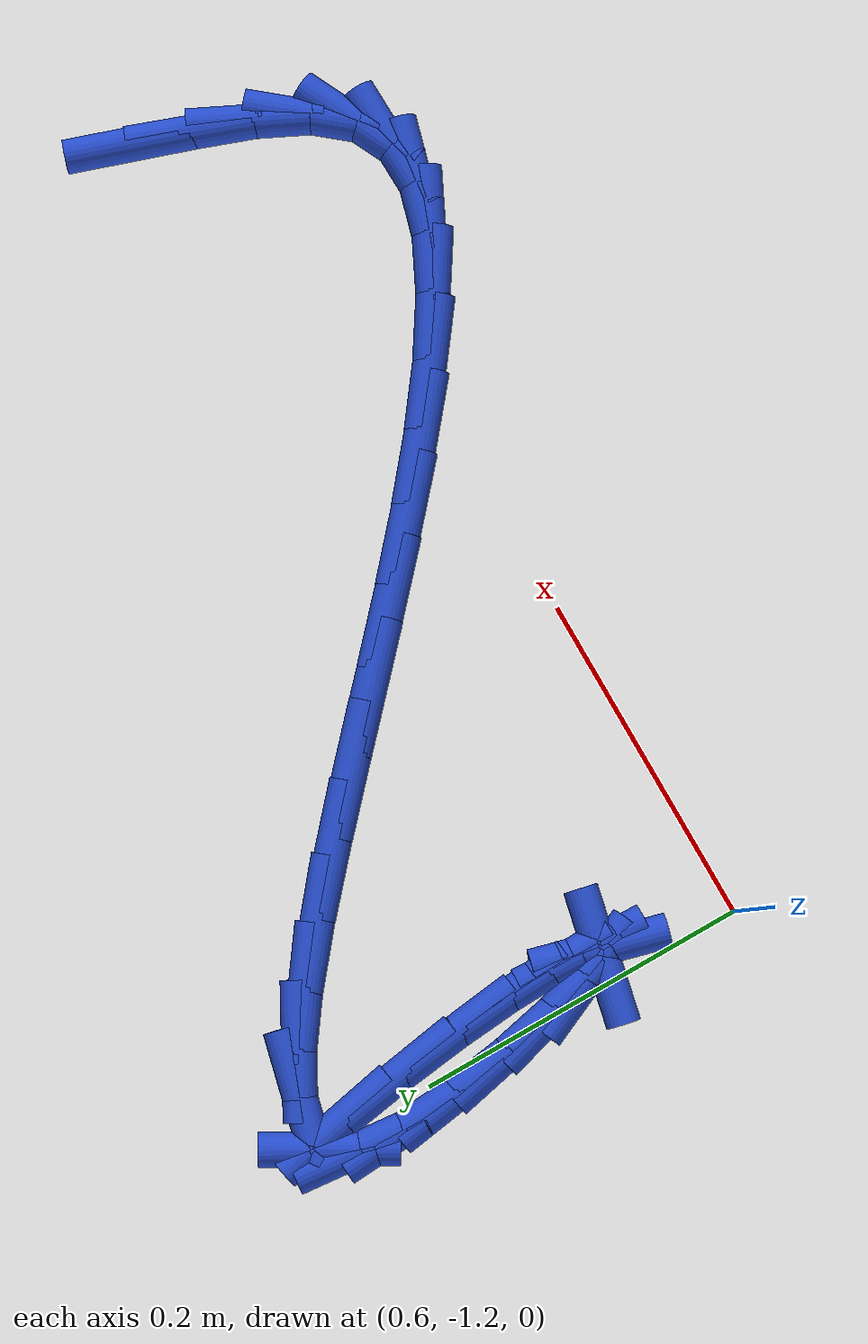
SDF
<sdf version="1.6">
 <world name="default">
  <model name="ground_plane">
   <static>1</static>
   <link name="link">
    <collision name="collision">
     <geometry><plane><normal>0 0 1</normal><size>100 100</size></plane></geometry>
     <surface><friction><ode><mu>100</mu><mu2>50</mu2></ode></friction></surface>
    </collision>
    <visual name="visual">
     <cast_shadows>0</cast_shadows>
     <geometry><plane><normal>0 0 1</normal><size>100 100</size></plane></geometry>
     <material>
      <script><uri>file://media/materials/scripts/gazebo.material</uri><name>Gazebo/WhiteGlow</name></script>
     </material>
    </visual>
   </link>
  </model>
  <model name="line">
   <link name="link_210">
    <pose>1.1556741181518333 -1.1214930604591091 0.01 0 1.57 1.2493564457080468</pose>
    <collision name="collision">
     <geometry><cylinder><radius>0.01</radius><length>0.08</length></cylinder></geometry>
    </collision>
    <visual name="visual">
     <material>
      <script><name>Gazebo/Blue</name><uri>file://media/materials/scripts/gazebo.material</uri></script>
     </material>
     <geometry><cylinder><radius>0.01</radius><length>0.08</length></cylinder></geometry>
    </visual>
   </link>
   <link name="link_211">
    <pose>1.1442812799184396 -1.155707002687211 0.01 0 1.57 1.2255318831087874</pose>
    <collision name="collision">
     <geometry><cylinder><radius>0.01</radius><length>0.08</length></cylinder></geometry>
    </collision>
    <visual name="visual">
     <material>
      <script><name>Gazebo/Blue</name><uri>file://media/materials/scripts/gazebo.material</uri></script>
     </material>
     <geometry><cylinder><radius>0.01</radius><length>0.08</length></cylinder></geometry>
    </visual>
   </link>
   <link name="link_212">
    <pose>1.1321447526475255 -1.18945040057624 0.01 0 1.57 1.121730780999861</pose>
    <collision name="collision">
     <geometry><cylinder><radius>0.01</radius><length>0.08</length></cylinder></geometry>
    </collision>
    <visual name="visual">
     <material>
      <script><name>Gazebo/Blue</name><uri>file://media/materials/scripts/gazebo.material</uri></script>
     </material>
     <geometry><cylinder><radius>0.01</radius><length>0.08</length></cylinder></geometry>
    </visual>
   </link>
   <link name="link_213">
    <pose>1.1179490446383138 -1.2189080000313264 0.01 0 1.57 0.8824086902074373</pose>
    <collision name="collision">
     <geometry><cylinder><radius>0.01</radius><length>0.08</length></cylinder></geometry>
    </collision>
    <visual name="visual">
     <material>
      <script><name>Gazebo/Blue</name><uri>file://media/materials/scripts/gazebo.material</uri></script>
     </material>
     <geometry><cylinder><radius>0.01</radius><length>0.08</length></cylinder></geometry>
    </visual>
   </link>
   <link name="link_214">
    <pose>1.1003792449937324 -1.2402661079338253 0.01 0 1.57 0.4538479155836032</pose>
    <collision name="collision">
     <geometry><cylinder><radius>0.01</radius><length>0.08</length></cylinder></geometry>
    </collision>
    <visual name="visual">
     <material>
      <script><name>Gazebo/Blue</name><uri>file://media/materials/scripts/gazebo.material</uri></script>
     </material>
     <geometry><cylinder><radius>0.01</radius><length>0.08</length></cylinder></geometry>
    </visual>
   </link>
   <link name="link_215">
    <pose>1.0785654659004789 -1.2509070814814744 0.01 0 1.57 0.024717342758291277</pose>
    <collision name="collision">
     <geometry><cylinder><radius>0.01</radius><length>0.08</length></cylinder></geometry>
    </collision>
    <visual name="visual">
     <material>
      <script><name>Gazebo/Blue</name><uri>file://media/materials/scripts/gazebo.material</uri></script>
     </material>
     <geometry><cylinder><radius>0.01</radius><length>0.08</length></cylinder></geometry>
    </visual>
   </link>
   <link name="link_216">
    <pose>1.0528764265820598 -1.251542175612999 0.01 0 1.57 -0.2720511830444107</pose>
    <collision name="collision">
     <geometry><cylinder><radius>0.01</radius><length>0.08</length></cylinder></geometry>
    </collision>
    <visual name="visual">
     <material>
      <script><name>Gazebo/Blue</name><uri>file://media/materials/scripts/gazebo.material</uri></script>
     </material>
     <geometry><cylinder><radius>0.01</radius><length>0.08</length></cylinder></geometry>
    </visual>
   </link>
   <link name="link_217">
    <pose>1.0238946206185846 -1.243457188242927 0.01 0 1.57 -0.45536505172972647</pose>
    <collision name="collision">
     <geometry><cylinder><radius>0.01</radius><length>0.08</length></cylinder></geometry>
    </collision>
    <visual name="visual">
     <material>
      <script><name>Gazebo/Blue</name><uri>file://media/materials/scripts/gazebo.material</uri></script>
     </material>
     <geometry><cylinder><radius>0.01</radius><length>0.08</length></cylinder></geometry>
    </visual>
   </link>
   <link name="link_218">
    <pose>0.992202541590167 -1.2279379172857887 0.01 0 1.57 -0.5697964899398342</pose>
    <collision name="collision">
     <geometry><cylinder><radius>0.01</radius><length>0.08</length></cylinder></geometry>
    </collision>
    <visual name="visual">
     <material>
      <script><name>Gazebo/Blue</name><uri>file://media/materials/scripts/gazebo.material</uri></script>
     </material>
     <geometry><cylinder><radius>0.01</radius><length>0.08</length></cylinder></geometry>
    </visual>
   </link>
   <link name="link_219">
    <pose>0.9583826830769155 -1.206270160656112 0.01 0 1.57 -0.6436202857621763</pose>
    <collision name="collision">
     <geometry><cylinder><radius>0.01</radius><length>0.08</length></cylinder></geometry>
    </collision>
    <visual name="visual">
     <material>
      <script><name>Gazebo/Blue</name><uri>file://media/materials/scripts/gazebo.material</uri></script>
     </material>
     <geometry><cylinder><radius>0.01</radius><length>0.08</length></cylinder></geometry>
    </visual>
   </link>
   <link name="link_220">
    <pose>0.9230175386589423 -1.1797397162684256 0.01 0 1.57 -0.6920363377780407</pose>
    <collision name="collision">
     <geometry><cylinder><radius>0.01</radius><length>0.08</length></cylinder></geometry>
    </collision>
    <visual name="visual">
     <material>
      <script><name>Gazebo/Blue</name><uri>file://media/materials/scripts/gazebo.material</uri></script>
     </material>
     <geometry><cylinder><radius>0.01</radius><length>0.08</length></cylinder></geometry>
    </visual>
   </link>
   <link name="link_221">
    <pose>0.8866896019163573 -1.1496323820372583 0.01 0 1.57 -0.7231142274586834</pose>
    <collision name="collision">
     <geometry><cylinder><radius>0.01</radius><length>0.08</length></cylinder></geometry>
    </collision>
    <visual name="visual">
     <material>
      <script><name>Gazebo/Blue</name><uri>file://media/materials/scripts/gazebo.material</uri></script>
     </material>
     <geometry><cylinder><radius>0.01</radius><length>0.08</length></cylinder></geometry>
    </visual>
   </link>
   <link name="link_222">
    <pose>0.8499813664292716 -1.117233955877139 0.01 0 1.57 -0.7410511874816257</pose>
    <collision name="collision">
     <geometry><cylinder><radius>0.01</radius><length>0.08</length></cylinder></geometry>
    </collision>
    <visual name="visual">
     <material>
      <script><name>Gazebo/Blue</name><uri>file://media/materials/scripts/gazebo.material</uri></script>
     </material>
     <geometry><cylinder><radius>0.01</radius><length>0.08</length></cylinder></geometry>
    </visual>
   </link>
   <link name="link_223">
    <pose>0.8134753257777958 -1.0838302357025957 0.01 0 1.57 -0.7476769079566292</pose>
    <collision name="collision">
     <geometry><cylinder><radius>0.01</radius><length>0.08</length></cylinder></geometry>
    </collision>
    <visual name="visual">
     <material>
      <script><name>Gazebo/Blue</name><uri>file://media/materials/scripts/gazebo.material</uri></script>
     </material>
     <geometry><cylinder><radius>0.01</radius><length>0.08</length></cylinder></geometry>
    </visual>
   </link>
   <link name="link_224">
    <pose>0.7777539735420407 -1.050707019428158 0.01 0 1.57 -0.7429837775755512</pose>
    <collision name="collision">
     <geometry><cylinder><radius>0.01</radius><length>0.08</length></cylinder></geometry>
    </collision>
    <visual name="visual">
     <material>
      <script><name>Gazebo/Blue</name><uri>file://media/materials/scripts/gazebo.material</uri></script>
     </material>
     <geometry><cylinder><radius>0.01</radius><length>0.08</length></cylinder></geometry>
    </visual>
   </link>
   <link name="link_225">
    <pose>0.7433998033021171 -1.0191501049683545 0.01 0 1.57 -0.7249299680073964</pose>
    <collision name="collision">
     <geometry><cylinder><radius>0.01</radius><length>0.08</length></cylinder></geometry>
    </collision>
    <visual name="visual">
     <material>
      <script><name>Gazebo/Blue</name><uri>file://media/materials/scripts/gazebo.material</uri></script>
     </material>
     <geometry><cylinder><radius>0.01</radius><length>0.08</length></cylinder></geometry>
    </visual>
   </link>
   <link name="link_226">
    <pose>0.7109953086381349 -0.9904452902377127 0.01 0 1.57 -0.6882493597518388</pose>
    <collision name="collision">
     <geometry><cylinder><radius>0.01</radius><length>0.08</length></cylinder></geometry>
    </collision>
    <visual name="visual">
     <material>
      <script><name>Gazebo/Blue</name><uri>file://media/materials/scripts/gazebo.material</uri></script>
     </material>
     <geometry><cylinder><radius>0.01</radius><length>0.08</length></cylinder></geometry>
    </visual>
   </link>
   <link name="link_227">
    <pose>0.6811229831302071 -0.9658783731507634 0.01 0 1.57 -0.6210064536629935</pose>
    <collision name="collision">
     <geometry><cylinder><radius>0.01</radius><length>0.08</length></cylinder></geometry>
    </collision>
    <visual name="visual">
     <material>
      <script><name>Gazebo/Blue</name><uri>file://media/materials/scripts/gazebo.material</uri></script>
     </material>
     <geometry><cylinder><radius>0.01</radius><length>0.08</length></cylinder></geometry>
    </visual>
   </link>
   <link name="link_228">
    <pose>0.6543653203584429 -0.9467351516220341 0.01 0 1.57 -0.49449697108082796</pose>
    <collision name="collision">
     <geometry><cylinder><radius>0.01</radius><length>0.08</length></cylinder></geometry>
    </collision>
    <visual name="visual">
     <material>
      <script><name>Gazebo/Blue</name><uri>file://media/materials/scripts/gazebo.material</uri></script>
     </material>
     <geometry><cylinder><radius>0.01</radius><length>0.08</length></cylinder></geometry>
    </visual>
   </link>
   <link name="link_229">
    <pose>0.6313048139029536 -0.9343014235660541 0.01 0 1.57 -0.23206980460977042</pose>
    <collision name="collision">
     <geometry><cylinder><radius>0.01</radius><length>0.08</length></cylinder></geometry>
    </collision>
    <visual name="visual">
     <material>
      <script><name>Gazebo/Blue</name><uri>file://media/materials/scripts/gazebo.material</uri></script>
     </material>
     <geometry><cylinder><radius>0.01</radius><length>0.08</length></cylinder></geometry>
    </visual>
   </link>
   <link name="link_231">
    <pose>0.598605244261242 -0.9347056395304552 0.01 0 1.57 1.0680114554164692</pose>
    <collision name="collision">
     <geometry><cylinder><radius>0.01</radius><length>0.08</length></cylinder></geometry>
    </collision>
    <visual name="visual">
     <material>
      <script><name>Gazebo/Blue</name><uri>file://media/materials/scripts/gazebo.material</uri></script>
     </material>
     <geometry><cylinder><radius>0.01</radius><length>0.08</length></cylinder></geometry>
    </visual>
   </link>
   <link name="link_232">
    <pose>0.5901311682352413 -0.9501151793798939 0.01 0 1.57 1.4720016110622949</pose>
    <collision name="collision">
     <geometry><cylinder><radius>0.01</radius><length>0.08</length></cylinder></geometry>
    </collision>
    <visual name="visual">
     <material>
      <script><name>Gazebo/Blue</name><uri>file://media/materials/scripts/gazebo.material</uri></script>
     </material>
     <geometry><cylinder><radius>0.01</radius><length>0.08</length></cylinder></geometry>
    </visual>
   </link>
   <link name="link_233">
    <pose>0.5874882241748951 -0.9767799631562484 0.01 0 1.57 -1.506907867222801</pose>
    <collision name="collision">
     <geometry><cylinder><radius>0.01</radius><length>0.08</length></cylinder></geometry>
    </collision>
    <visual name="visual">
     <material>
      <script><name>Gazebo/Blue</name><uri>file://media/materials/scripts/gazebo.material</uri></script>
     </material>
     <geometry><cylinder><radius>0.01</radius><length>0.08</length></cylinder></geometry>
    </visual>
   </link>
   <link name="link_234">
    <pose>0.5896906036310475 -1.0112053060930362 0.01 0 1.57 -1.4234994136731987</pose>
    <collision name="collision">
     <geometry><cylinder><radius>0.01</radius><length>0.08</length></cylinder></geometry>
    </collision>
    <visual name="visual">
     <material>
      <script><name>Gazebo/Blue</name><uri>file://media/materials/scripts/gazebo.material</uri></script>
     </material>
     <geometry><cylinder><radius>0.01</radius><length>0.08</length></cylinder></geometry>
    </visual>
   </link>
   <link name="link_235">
    <pose>0.5951660468066194 -1.0481089082452628 0.01 0 1.57 -1.3633955445401609</pose>
    <collision name="collision">
     <geometry><cylinder><radius>0.01</radius><length>0.08</length></cylinder></geometry>
    </collision>
    <visual name="visual">
     <material>
      <script><name>Gazebo/Blue</name><uri>file://media/materials/scripts/gazebo.material</uri></script>
     </material>
     <geometry><cylinder><radius>0.01</radius><length>0.08</length></cylinder></geometry>
    </visual>
   </link>
   <link name="link_236">
    <pose>0.6023400884070871 -1.0822017468925156 0.01 0 1.57 -1.297069987070529</pose>
    <collision name="collision">
     <geometry><cylinder><radius>0.01</radius><length>0.08</length></cylinder></geometry>
    </collision>
    <visual name="visual">
     <material>
      <script><name>Gazebo/Blue</name><uri>file://media/materials/scripts/gazebo.material</uri></script>
     </material>
     <geometry><cylinder><radius>0.01</radius><length>0.08</length></cylinder></geometry>
    </visual>
   </link>
   <link name="link_237">
    <pose>0.6096382631379262 -1.108194799314379 0.01 0 1.57 -1.1492391151182262</pose>
    <collision name="collision">
     <geometry><cylinder><radius>0.01</radius><length>0.08</length></cylinder></geometry>
    </collision>
    <visual name="visual">
     <material>
      <script><name>Gazebo/Blue</name><uri>file://media/materials/scripts/gazebo.material</uri></script>
     </material>
     <geometry><cylinder><radius>0.01</radius><length>0.08</length></cylinder></geometry>
    </visual>
   </link>
   <link name="link_238">
    <pose>0.6156807345132256 -1.1216691764670559 0.01 0 1.57 -0.21614913025140703</pose>
    <collision name="collision">
     <geometry><cylinder><radius>0.01</radius><length>0.08</length></cylinder></geometry>
    </collision>
    <visual name="visual">
     <material>
      <script><name>Gazebo/Blue</name><uri>file://media/materials/scripts/gazebo.material</uri></script>
     </material>
     <geometry><cylinder><radius>0.01</radius><length>0.08</length></cylinder></geometry>
    </visual>
   </link>
   <link name="link_239">
    <pose>0.6200782861284109 -1.1226347884123355 0.01 0 1.57 1.3123089720220458</pose>
    <collision name="collision">
     <geometry><cylinder><radius>0.01</radius><length>0.08</length></cylinder></geometry>
    </collision>
    <visual name="visual">
     <material>
      <script><name>Gazebo/Blue</name><uri>file://media/materials/scripts/gazebo.material</uri></script>
     </material>
     <geometry><cylinder><radius>0.01</radius><length>0.08</length></cylinder></geometry>
    </visual>
   </link>
   <link name="link_240">
    <pose>0.6227560828096647 -1.1125070601413167 0.01 0 1.57 1.526224428645441</pose>
    <collision name="collision">
     <geometry><cylinder><radius>0.01</radius><length>0.08</length></cylinder></geometry>
    </collision>
    <visual name="visual">
     <material>
      <script><name>Gazebo/Blue</name><uri>file://media/materials/scripts/gazebo.material</uri></script>
     </material>
     <geometry><cylinder><radius>0.01</radius><length>0.08</length></cylinder></geometry>
    </visual>
   </link>
   <link name="link_241">
    <pose>0.6236394174518504 -1.0927019892061292 0.01 0 1.57 -1.5356857031477162</pose>
    <collision name="collision">
     <geometry><cylinder><radius>0.01</radius><length>0.08</length></cylinder></geometry>
    </collision>
    <visual name="visual">
     <material>
      <script><name>Gazebo/Blue</name><uri>file://media/materials/scripts/gazebo.material</uri></script>
     </material>
     <geometry><cylinder><radius>0.01</radius><length>0.08</length></cylinder></geometry>
    </visual>
   </link>
   <link name="link_242">
    <pose>0.6226535829498308 -1.0646355731589032 0.01 0 1.57 -1.4870749046235883</pose>
    <collision name="collision">
     <geometry><cylinder><radius>0.01</radius><length>0.08</length></cylinder></geometry>
    </collision>
    <visual name="visual">
     <material>
      <script><name>Gazebo/Blue</name><uri>file://media/materials/scripts/gazebo.material</uri></script>
     </material>
     <geometry><cylinder><radius>0.01</radius><length>0.08</length></cylinder></geometry>
    </visual>
   </link>
   <link name="link_243">
    <pose>0.619723872198469 -1.0297238095517678 0.01 0 1.57 -1.4487446949063443</pose>
    <collision name="collision">
     <geometry><cylinder><radius>0.01</radius><length>0.08</length></cylinder></geometry>
    </collision>
    <visual name="visual">
     <material>
      <script><name>Gazebo/Blue</name><uri>file://media/materials/scripts/gazebo.material</uri></script>
     </material>
     <geometry><cylinder><radius>0.01</radius><length>0.08</length></cylinder></geometry>
    </visual>
   </link>
   <link name="link_244">
    <pose>0.614775578092628 -0.9893826959368549 0.01 0 1.57 -1.4133532154815445</pose>
    <collision name="collision">
     <geometry><cylinder><radius>0.01</radius><length>0.08</length></cylinder></geometry>
    </collision>
    <visual name="visual">
     <material>
      <script><name>Gazebo/Blue</name><uri>file://media/materials/scripts/gazebo.material</uri></script>
     </material>
     <geometry><cylinder><radius>0.01</radius><length>0.08</length></cylinder></geometry>
    </visual>
   </link>
   <link name="link_245">
    <pose>0.607733993527171 -0.9450282298662944 0.01 0 1.57 -1.3771057759694014</pose>
    <collision name="collision">
     <geometry><cylinder><radius>0.01</radius><length>0.08</length></cylinder></geometry>
    </collision>
    <visual name="visual">
     <material>
      <script><name>Gazebo/Blue</name><uri>file://media/materials/scripts/gazebo.material</uri></script>
     </material>
     <geometry><cylinder><radius>0.01</radius><length>0.08</length></cylinder></geometry>
    </visual>
   </link>
  </model>
 </world>
</sdf>
